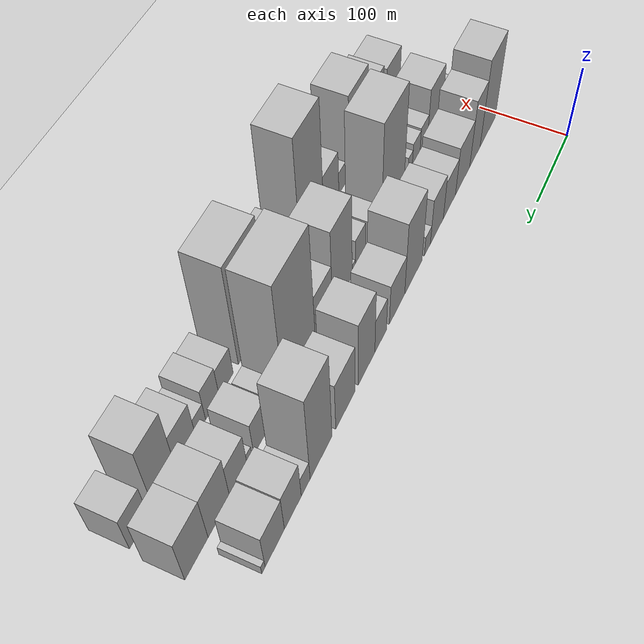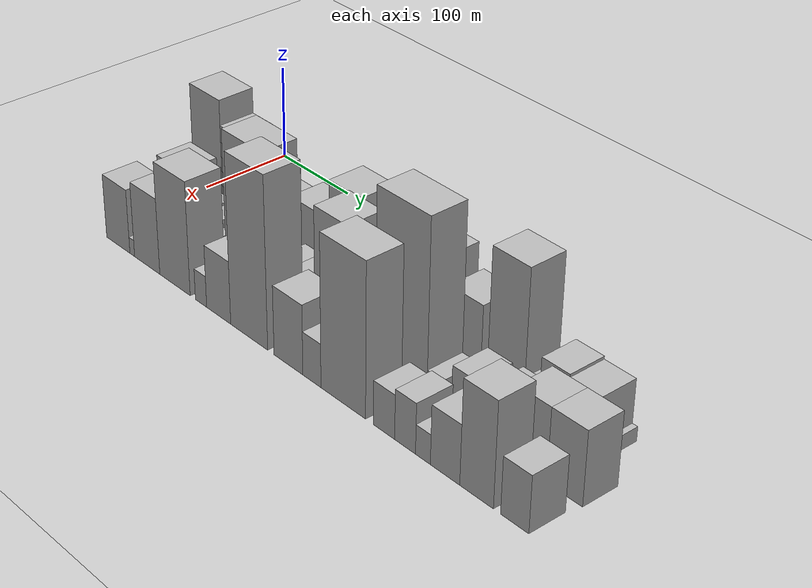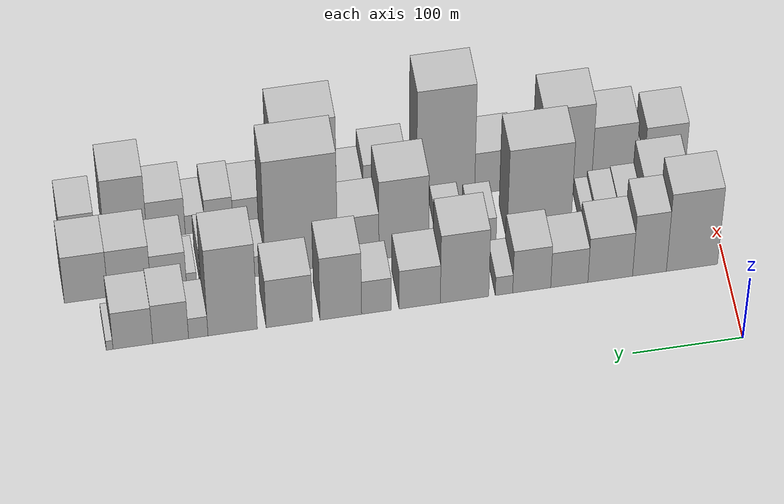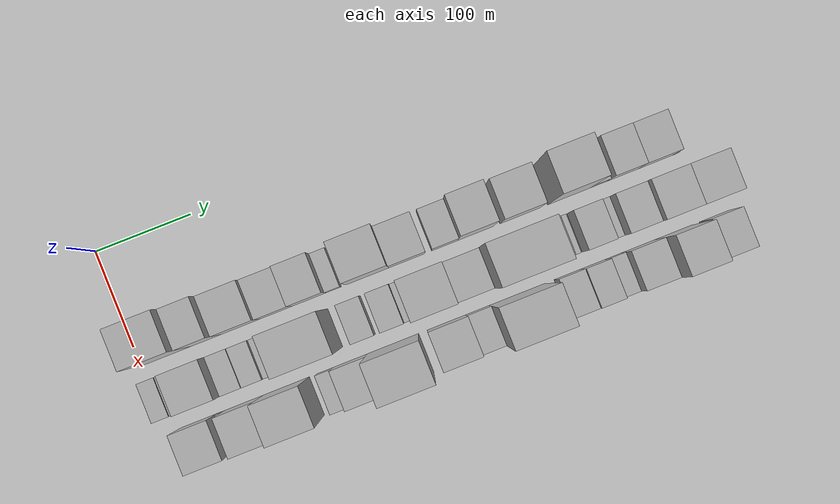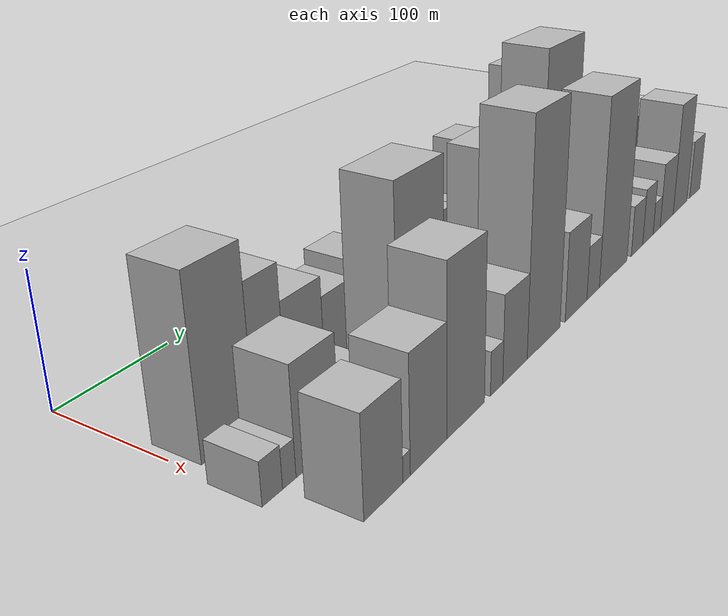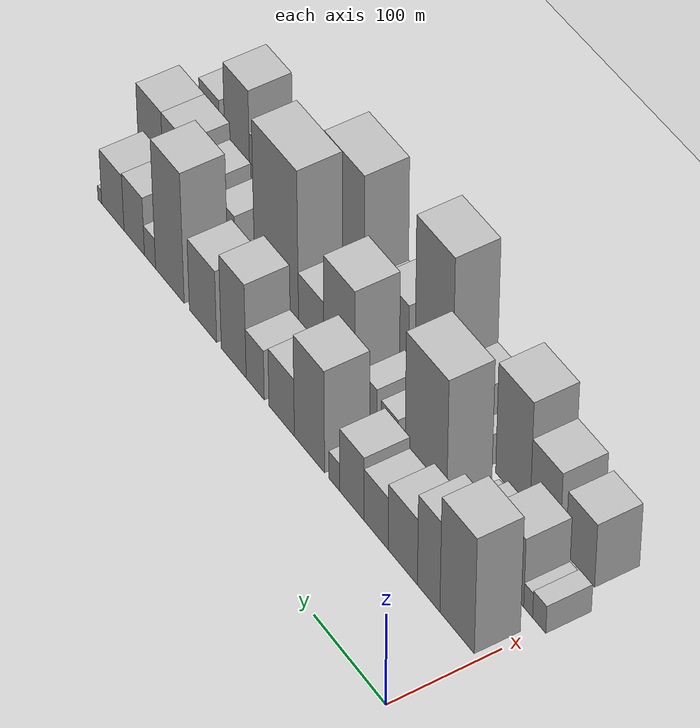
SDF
<sdf version="1.6">
 <world name="default">
  <include>
   <name>ground_plane_2</name>
   <uri>model://HANNAS_ground_plane</uri>
   <pose>100 0 0  0 0 0</pose>
  </include>
  <model name="building_21">
   <static>1</static>
   <pose>100.0000 30.4081 0 0.000000 0.000000 0.000000</pose>
   <link name="link">
    <pose>0 0 63.00 0 0 0</pose>
    <collision name="collision"><geometry><box><size>40.0000 46.9084 126.0000</size></box></geometry></collision>
    <visual name="visual">
     <cast_shadows>0</cast_shadows>
     <geometry><box><size>40.0000 46.9084 126.0000</size></box></geometry>
     <material>
      <script>
       <uri>model://HANNAS_wall/materials/scripts</uri>
       <uri>model://HANNAS_wall/materials/textures</uri>
       <name>vrc/HANNAS_wall</name>
      </script>
     </material>
    </visual>
   </link>
  </model>
  <model name="building_22">
   <static>1</static>
   <pose>100.0000 69.3866 0 0.000000 0.000000 0.000000</pose>
   <link name="link">
    <pose>0 0 49.50 0 0 0</pose>
    <collision name="collision"><geometry><box><size>40.0000 31.0486 99.0000</size></box></geometry></collision>
    <visual name="visual">
     <cast_shadows>0</cast_shadows>
     <geometry><box><size>40.0000 31.0486 99.0000</size></box></geometry>
     <material>
      <script>
       <uri>model://HANNAS_wall/materials/scripts</uri>
       <uri>model://HANNAS_wall/materials/textures</uri>
       <name>vrc/HANNAS_wall</name>
      </script>
     </material>
    </visual>
   </link>
  </model>
  <model name="building_23">
   <static>1</static>
   <pose>100.0000 105.3446 0 0.000000 0.000000 0.000000</pose>
   <link name="link">
    <pose>0 0 36.00 0 0 0</pose>
    <collision name="collision"><geometry><box><size>40.0000 40.8673 72.0000</size></box></geometry></collision>
    <visual name="visual">
     <cast_shadows>0</cast_shadows>
     <geometry><box><size>40.0000 40.8673 72.0000</size></box></geometry>
     <material>
      <script>
       <uri>model://HANNAS_wall/materials/scripts</uri>
       <uri>model://HANNAS_wall/materials/textures</uri>
       <name>vrc/HANNAS_wall</name>
      </script>
     </material>
    </visual>
   </link>
  </model>
  <model name="building_24">
   <static>1</static>
   <pose>100.0000 142.7728 0 0.000000 0.000000 0.000000</pose>
   <link name="link">
    <pose>0 0 28.50 0 0 0</pose>
    <collision name="collision"><geometry><box><size>40.0000 33.9892 57.0000</size></box></geometry></collision>
    <visual name="visual">
     <cast_shadows>0</cast_shadows>
     <geometry><box><size>40.0000 33.9892 57.0000</size></box></geometry>
     <material>
      <script>
       <uri>model://HANNAS_wall/materials/scripts</uri>
       <uri>model://HANNAS_wall/materials/textures</uri>
       <name>vrc/HANNAS_wall</name>
      </script>
     </material>
    </visual>
   </link>
  </model>
  <model name="building_25">
   <static>1</static>
   <pose>100.0000 177.1389 0 0.000000 0.000000 0.000000</pose>
   <link name="link">
    <pose>0 0 34.50 0 0 0</pose>
    <collision name="collision"><geometry><box><size>40.0000 34.7431 69.0000</size></box></geometry></collision>
    <visual name="visual">
     <cast_shadows>0</cast_shadows>
     <geometry><box><size>40.0000 34.7431 69.0000</size></box></geometry>
     <material>
      <script>
       <uri>model://HANNAS_wall/materials/scripts</uri>
       <uri>model://HANNAS_wall/materials/textures</uri>
       <name>vrc/HANNAS_wall</name>
      </script>
     </material>
    </visual>
   </link>
  </model>
  <model name="building_26">
   <static>1</static>
   <pose>100.0000 202.4227 0 0.000000 0.000000 0.000000</pose>
   <link name="link">
    <pose>0 0 15.00 0 0 0</pose>
    <collision name="collision"><geometry><box><size>40.0000 15.8244 30.0000</size></box></geometry></collision>
    <visual name="visual">
     <cast_shadows>0</cast_shadows>
     <geometry><box><size>40.0000 15.8244 30.0000</size></box></geometry>
     <material>
      <script>
       <uri>model://HANNAS_wall/materials/scripts</uri>
       <uri>model://HANNAS_wall/materials/textures</uri>
       <name>vrc/HANNAS_wall</name>
      </script>
     </material>
    </visual>
   </link>
  </model>
  <model name="building_27">
   <static>1</static>
   <pose>100.0000 238.3646 0 0.000000 0.000000 0.000000</pose>
   <link name="link">
    <pose>0 0 55.50 0 0 0</pose>
    <collision name="collision"><geometry><box><size>40.0000 44.0593 111.0000</size></box></geometry></collision>
    <visual name="visual">
     <cast_shadows>0</cast_shadows>
     <geometry><box><size>40.0000 44.0593 111.0000</size></box></geometry>
     <material>
      <script>
       <uri>model://HANNAS_wall/materials/scripts</uri>
       <uri>model://HANNAS_wall/materials/textures</uri>
       <name>vrc/HANNAS_wall</name>
      </script>
     </material>
    </visual>
   </link>
  </model>
  <model name="building_28">
   <static>1</static>
   <pose>100.0000 279.1129 0 0.000000 0.000000 0.000000</pose>
   <link name="link">
    <pose>0 0 31.50 0 0 0</pose>
    <collision name="collision"><geometry><box><size>40.0000 37.4374 63.0000</size></box></geometry></collision>
    <visual name="visual">
     <cast_shadows>0</cast_shadows>
     <geometry><box><size>40.0000 37.4374 63.0000</size></box></geometry>
     <material>
      <script>
       <uri>model://HANNAS_wall/materials/scripts</uri>
       <uri>model://HANNAS_wall/materials/textures</uri>
       <name>vrc/HANNAS_wall</name>
      </script>
     </material>
    </visual>
   </link>
  </model>
  <model name="building_29">
   <static>1</static>
   <pose>100.0000 318.3676 0 0.000000 0.000000 0.000000</pose>
   <link name="link">
    <pose>0 0 27.00 0 0 0</pose>
    <collision name="collision"><geometry><box><size>40.0000 27.0721 54.0000</size></box></geometry></collision>
    <visual name="visual">
     <cast_shadows>0</cast_shadows>
     <geometry><box><size>40.0000 27.0721 54.0000</size></box></geometry>
     <material>
      <script>
       <uri>model://HANNAS_wall/materials/scripts</uri>
       <uri>model://HANNAS_wall/materials/textures</uri>
       <name>vrc/HANNAS_wall</name>
      </script>
     </material>
    </visual>
   </link>
  </model>
  <model name="building_30">
   <static>1</static>
   <pose>100.0000 350.6865 0 0.000000 0.000000 0.000000</pose>
   <link name="link">
    <pose>0 0 51.00 0 0 0</pose>
    <collision name="collision"><geometry><box><size>40.0000 37.5657 102.0000</size></box></geometry></collision>
    <visual name="visual">
     <cast_shadows>0</cast_shadows>
     <geometry><box><size>40.0000 37.5657 102.0000</size></box></geometry>
     <material>
      <script>
       <uri>model://HANNAS_wall/materials/scripts</uri>
       <uri>model://HANNAS_wall/materials/textures</uri>
       <name>vrc/HANNAS_wall</name>
      </script>
     </material>
    </visual>
   </link>
  </model>
  <model name="building_31">
   <static>1</static>
   <pose>100.0000 397.3536 0 0.000000 0.000000 0.000000</pose>
   <link name="link">
    <pose>0 0 39.00 0 0 0</pose>
    <collision name="collision"><geometry><box><size>40.0000 41.7685 78.0000</size></box></geometry></collision>
    <visual name="visual">
     <cast_shadows>0</cast_shadows>
     <geometry><box><size>40.0000 41.7685 78.0000</size></box></geometry>
     <material>
      <script>
       <uri>model://HANNAS_wall/materials/scripts</uri>
       <uri>model://HANNAS_wall/materials/textures</uri>
       <name>vrc/HANNAS_wall</name>
      </script>
     </material>
    </visual>
   </link>
  </model>
  <model name="building_32">
   <static>1</static>
   <pose>100.0000 448.4988 0 0.000000 0.000000 0.000000</pose>
   <link name="link">
    <pose>0 0 70.50 0 0 0</pose>
    <collision name="collision"><geometry><box><size>40.0000 44.5219 141.0000</size></box></geometry></collision>
    <visual name="visual">
     <cast_shadows>0</cast_shadows>
     <geometry><box><size>40.0000 44.5219 141.0000</size></box></geometry>
     <material>
      <script>
       <uri>model://HANNAS_wall/materials/scripts</uri>
       <uri>model://HANNAS_wall/materials/textures</uri>
       <name>vrc/HANNAS_wall</name>
      </script>
     </material>
    </visual>
   </link>
  </model>
  <model name="building_33">
   <static>1</static>
   <pose>100.0000 479.5083 0 0.000000 0.000000 0.000000</pose>
   <link name="link">
    <pose>0 0 16.50 0 0 0</pose>
    <collision name="collision"><geometry><box><size>40.0000 17.4971 33.0000</size></box></geometry></collision>
    <visual name="visual">
     <cast_shadows>0</cast_shadows>
     <geometry><box><size>40.0000 17.4971 33.0000</size></box></geometry>
     <material>
      <script>
       <uri>model://HANNAS_wall/materials/scripts</uri>
       <uri>model://HANNAS_wall/materials/textures</uri>
       <name>vrc/HANNAS_wall</name>
      </script>
     </material>
    </visual>
   </link>
  </model>
  <model name="building_34">
   <static>1</static>
   <pose>100.0000 504.4014 0 0.000000 0.000000 0.000000</pose>
   <link name="link">
    <pose>0 0 31.50 0 0 0</pose>
    <collision name="collision"><geometry><box><size>40.0000 32.2890 63.0000</size></box></geometry></collision>
    <visual name="visual">
     <cast_shadows>0</cast_shadows>
     <geometry><box><size>40.0000 32.2890 63.0000</size></box></geometry>
     <material>
      <script>
       <uri>model://HANNAS_wall/materials/scripts</uri>
       <uri>model://HANNAS_wall/materials/textures</uri>
       <name>vrc/HANNAS_wall</name>
      </script>
     </material>
    </visual>
   </link>
  </model>
  <model name="building_35">
   <static>1</static>
   <pose>100.0000 538.3689 0 0.000000 0.000000 0.000000</pose>
   <link name="link">
    <pose>0 0 30.00 0 0 0</pose>
    <collision name="collision"><geometry><box><size>40.0000 35.6460 60.0000</size></box></geometry></collision>
    <visual name="visual">
     <cast_shadows>0</cast_shadows>
     <geometry><box><size>40.0000 35.6460 60.0000</size></box></geometry>
     <material>
      <script>
       <uri>model://HANNAS_wall/materials/scripts</uri>
       <uri>model://HANNAS_wall/materials/textures</uri>
       <name>vrc/HANNAS_wall</name>
      </script>
     </material>
    </visual>
   </link>
  </model>
  <model name="building_36">
   <static>1</static>
   <pose>100.0000 559.2522 0 0.000000 0.000000 0.000000</pose>
   <link name="link">
    <pose>0 0 7.50 0 0 0</pose>
    <collision name="collision"><geometry><box><size>40.0000 6.1206 15.0000</size></box></geometry></collision>
    <visual name="visual">
     <cast_shadows>0</cast_shadows>
     <geometry><box><size>40.0000 6.1206 15.0000</size></box></geometry>
     <material>
      <script>
       <uri>model://HANNAS_wall/materials/scripts</uri>
       <uri>model://HANNAS_wall/materials/textures</uri>
       <name>vrc/HANNAS_wall</name>
      </script>
     </material>
    </visual>
   </link>
  </model>
  <model name="building_52">
   <static>1</static>
   <pose>155.0000 4.6129 0 0.000000 0.000000 0.000000</pose>
   <link name="link">
    <pose>0 0 15.00 0 0 0</pose>
    <collision name="collision"><geometry><box><size>40.0000 17.6623 30.0000</size></box></geometry></collision>
    <visual name="visual">
     <cast_shadows>0</cast_shadows>
     <geometry><box><size>40.0000 17.6623 30.0000</size></box></geometry>
     <material>
      <script>
       <uri>model://HANNAS_wall/materials/scripts</uri>
       <uri>model://HANNAS_wall/materials/textures</uri>
       <name>vrc/HANNAS_wall</name>
      </script>
     </material>
    </visual>
   </link>
  </model>
  <model name="building_53">
   <static>1</static>
   <pose>155.0000 19.4923 0 0.000000 0.000000 0.000000</pose>
   <link name="link">
    <pose>0 0 13.50 0 0 0</pose>
    <collision name="collision"><geometry><box><size>40.0000 12.0966 27.0000</size></box></geometry></collision>
    <visual name="visual">
     <cast_shadows>0</cast_shadows>
     <geometry><box><size>40.0000 12.0966 27.0000</size></box></geometry>
     <material>
      <script>
       <uri>model://HANNAS_wall/materials/scripts</uri>
       <uri>model://HANNAS_wall/materials/textures</uri>
       <name>vrc/HANNAS_wall</name>
      </script>
     </material>
    </visual>
   </link>
  </model>
  <model name="building_54">
   <static>1</static>
   <pose>155.0000 46.2638 0 0.000000 0.000000 0.000000</pose>
   <link name="link">
    <pose>0 0 37.50 0 0 0</pose>
    <collision name="collision"><geometry><box><size>40.0000 41.4464 75.0000</size></box></geometry></collision>
    <visual name="visual">
     <cast_shadows>0</cast_shadows>
     <geometry><box><size>40.0000 41.4464 75.0000</size></box></geometry>
     <material>
      <script>
       <uri>model://HANNAS_wall/materials/scripts</uri>
       <uri>model://HANNAS_wall/materials/textures</uri>
       <name>vrc/HANNAS_wall</name>
      </script>
     </material>
    </visual>
   </link>
  </model>
  <model name="building_55">
   <static>1</static>
   <pose>155.0000 77.8366 0 0.000000 0.000000 0.000000</pose>
   <link name="link">
    <pose>0 0 19.50 0 0 0</pose>
    <collision name="collision"><geometry><box><size>40.0000 21.6991 39.0000</size></box></geometry></collision>
    <visual name="visual">
     <cast_shadows>0</cast_shadows>
     <geometry><box><size>40.0000 21.6991 39.0000</size></box></geometry>
     <material>
      <script>
       <uri>model://HANNAS_wall/materials/scripts</uri>
       <uri>model://HANNAS_wall/materials/textures</uri>
       <name>vrc/HANNAS_wall</name>
      </script>
     </material>
    </visual>
   </link>
  </model>
  <model name="building_56">
   <static>1</static>
   <pose>155.0000 99.1272 0 0.000000 0.000000 0.000000</pose>
   <link name="link">
    <pose>0 0 18.00 0 0 0</pose>
    <collision name="collision"><geometry><box><size>40.0000 20.8821 36.0000</size></box></geometry></collision>
    <visual name="visual">
     <cast_shadows>0</cast_shadows>
     <geometry><box><size>40.0000 20.8821 36.0000</size></box></geometry>
     <material>
      <script>
       <uri>model://HANNAS_wall/materials/scripts</uri>
       <uri>model://HANNAS_wall/materials/textures</uri>
       <name>vrc/HANNAS_wall</name>
      </script>
     </material>
    </visual>
   </link>
  </model>
  <model name="building_57">
   <static>1</static>
   <pose>155.0000 115.5061 0 0.000000 0.000000 0.000000</pose>
   <link name="link">
    <pose>0 0 13.50 0 0 0</pose>
    <collision name="collision"><geometry><box><size>40.0000 11.8757 27.0000</size></box></geometry></collision>
    <visual name="visual">
     <cast_shadows>0</cast_shadows>
     <geometry><box><size>40.0000 11.8757 27.0000</size></box></geometry>
     <material>
      <script>
       <uri>model://HANNAS_wall/materials/scripts</uri>
       <uri>model://HANNAS_wall/materials/textures</uri>
       <name>vrc/HANNAS_wall</name>
      </script>
     </material>
    </visual>
   </link>
  </model>
  <model name="building_58">
   <static>1</static>
   <pose>155.0000 160.7035 0 0.000000 0.000000 0.000000</pose>
   <link name="link">
    <pose>0 0 73.50 0 0 0</pose>
    <collision name="collision"><geometry><box><size>40.0000 58.5192 147.0000</size></box></geometry></collision>
    <visual name="visual">
     <cast_shadows>0</cast_shadows>
     <geometry><box><size>40.0000 58.5192 147.0000</size></box></geometry>
     <material>
      <script>
       <uri>model://HANNAS_wall/materials/scripts</uri>
       <uri>model://HANNAS_wall/materials/textures</uri>
       <name>vrc/HANNAS_wall</name>
      </script>
     </material>
    </visual>
   </link>
  </model>
  <model name="building_59">
   <static>1</static>
   <pose>155.0000 212.0692 0 0.000000 0.000000 0.000000</pose>
   <link name="link">
    <pose>0 0 21.00 0 0 0</pose>
    <collision name="collision"><geometry><box><size>40.0000 24.2121 42.0000</size></box></geometry></collision>
    <visual name="visual">
     <cast_shadows>0</cast_shadows>
     <geometry><box><size>40.0000 24.2121 42.0000</size></box></geometry>
     <material>
      <script>
       <uri>model://HANNAS_wall/materials/scripts</uri>
       <uri>model://HANNAS_wall/materials/textures</uri>
       <name>vrc/HANNAS_wall</name>
      </script>
     </material>
    </visual>
   </link>
  </model>
  <model name="building_60">
   <static>1</static>
   <pose>155.0000 242.2982 0 0.000000 0.000000 0.000000</pose>
   <link name="link">
    <pose>0 0 24.00 0 0 0</pose>
    <collision name="collision"><geometry><box><size>40.0000 24.2459 48.0000</size></box></geometry></collision>
    <visual name="visual">
     <cast_shadows>0</cast_shadows>
     <geometry><box><size>40.0000 24.2459 48.0000</size></box></geometry>
     <material>
      <script>
       <uri>model://HANNAS_wall/materials/scripts</uri>
       <uri>model://HANNAS_wall/materials/textures</uri>
       <name>vrc/HANNAS_wall</name>
      </script>
     </material>
    </visual>
   </link>
  </model>
  <model name="building_61">
   <static>1</static>
   <pose>155.0000 258.1698 0 0.000000 0.000000 0.000000</pose>
   <link name="link">
    <pose>0 0 9.00 0 0 0</pose>
    <collision name="collision"><geometry><box><size>40.0000 7.4972 18.0000</size></box></geometry></collision>
    <visual name="visual">
     <cast_shadows>0</cast_shadows>
     <geometry><box><size>40.0000 7.4972 18.0000</size></box></geometry>
     <material>
      <script>
       <uri>model://HANNAS_wall/materials/scripts</uri>
       <uri>model://HANNAS_wall/materials/textures</uri>
       <name>vrc/HANNAS_wall</name>
      </script>
     </material>
    </visual>
   </link>
  </model>
  <model name="building_62">
   <static>1</static>
   <pose>155.0000 284.5172 0 0.000000 0.000000 0.000000</pose>
   <link name="link">
    <pose>0 0 63.00 0 0 0</pose>
    <collision name="collision"><geometry><box><size>40.0000 45.1977 126.0000</size></box></geometry></collision>
    <visual name="visual">
     <cast_shadows>0</cast_shadows>
     <geometry><box><size>40.0000 45.1977 126.0000</size></box></geometry>
     <material>
      <script>
       <uri>model://HANNAS_wall/materials/scripts</uri>
       <uri>model://HANNAS_wall/materials/textures</uri>
       <name>vrc/HANNAS_wall</name>
      </script>
     </material>
    </visual>
   </link>
  </model>
  <model name="building_63">
   <static>1</static>
   <pose>155.0000 325.9085 0 0.000000 0.000000 0.000000</pose>
   <link name="link">
    <pose>0 0 37.50 0 0 0</pose>
    <collision name="collision"><geometry><box><size>40.0000 37.5848 75.0000</size></box></geometry></collision>
    <visual name="visual">
     <cast_shadows>0</cast_shadows>
     <geometry><box><size>40.0000 37.5848 75.0000</size></box></geometry>
     <material>
      <script>
       <uri>model://HANNAS_wall/materials/scripts</uri>
       <uri>model://HANNAS_wall/materials/textures</uri>
       <name>vrc/HANNAS_wall</name>
      </script>
     </material>
    </visual>
   </link>
  </model>
  <model name="building_64">
   <static>1</static>
   <pose>155.0000 377.6794 0 0.000000 0.000000 0.000000</pose>
   <link name="link">
    <pose>0 0 91.50 0 0 0</pose>
    <collision name="collision"><geometry><box><size>40.0000 65.9570 183.0000</size></box></geometry></collision>
    <visual name="visual">
     <cast_shadows>0</cast_shadows>
     <geometry><box><size>40.0000 65.9570 183.0000</size></box></geometry>
     <material>
      <script>
       <uri>model://HANNAS_wall/materials/scripts</uri>
       <uri>model://HANNAS_wall/materials/textures</uri>
       <name>vrc/HANNAS_wall</name>
      </script>
     </material>
    </visual>
   </link>
  </model>
  <model name="building_65">
   <static>1</static>
   <pose>155.0000 420.5182 0 0.000000 0.000000 0.000000</pose>
   <link name="link">
    <pose>0 0 16.50 0 0 0</pose>
    <collision name="collision"><geometry><box><size>40.0000 19.7208 33.0000</size></box></geometry></collision>
    <visual name="visual">
     <cast_shadows>0</cast_shadows>
     <geometry><box><size>40.0000 19.7208 33.0000</size></box></geometry>
     <material>
      <script>
       <uri>model://HANNAS_wall/materials/scripts</uri>
       <uri>model://HANNAS_wall/materials/textures</uri>
       <name>vrc/HANNAS_wall</name>
      </script>
     </material>
    </visual>
   </link>
  </model>
  <model name="building_66">
   <static>1</static>
   <pose>155.0000 434.0667 0 0.000000 0.000000 0.000000</pose>
   <link name="link">
    <pose>0 0 9.00 0 0 0</pose>
    <collision name="collision"><geometry><box><size>40.0000 7.3762 18.0000</size></box></geometry></collision>
    <visual name="visual">
     <cast_shadows>0</cast_shadows>
     <geometry><box><size>40.0000 7.3762 18.0000</size></box></geometry>
     <material>
      <script>
       <uri>model://HANNAS_wall/materials/scripts</uri>
       <uri>model://HANNAS_wall/materials/textures</uri>
       <name>vrc/HANNAS_wall</name>
      </script>
     </material>
    </visual>
   </link>
  </model>
  <model name="building_67">
   <static>1</static>
   <pose>155.0000 455.4434 0 0.000000 0.000000 0.000000</pose>
   <link name="link">
    <pose>0 0 27.00 0 0 0</pose>
    <collision name="collision"><geometry><box><size>40.0000 29.3773 54.0000</size></box></geometry></collision>
    <visual name="visual">
     <cast_shadows>0</cast_shadows>
     <geometry><box><size>40.0000 29.3773 54.0000</size></box></geometry>
     <material>
      <script>
       <uri>model://HANNAS_wall/materials/scripts</uri>
       <uri>model://HANNAS_wall/materials/textures</uri>
       <name>vrc/HANNAS_wall</name>
      </script>
     </material>
    </visual>
   </link>
  </model>
  <model name="building_68">
   <static>1</static>
   <pose>155.0000 477.7358 0 0.000000 0.000000 0.000000</pose>
   <link name="link">
    <pose>0 0 10.50 0 0 0</pose>
    <collision name="collision"><geometry><box><size>40.0000 9.2075 21.0000</size></box></geometry></collision>
    <visual name="visual">
     <cast_shadows>0</cast_shadows>
     <geometry><box><size>40.0000 9.2075 21.0000</size></box></geometry>
     <material>
      <script>
       <uri>model://HANNAS_wall/materials/scripts</uri>
       <uri>model://HANNAS_wall/materials/textures</uri>
       <name>vrc/HANNAS_wall</name>
      </script>
     </material>
    </visual>
   </link>
  </model>
  <model name="building_69">
   <static>1</static>
   <pose>155.0000 498.4529 0 0.000000 0.000000 0.000000</pose>
   <link name="link">
    <pose>0 0 28.50 0 0 0</pose>
    <collision name="collision"><geometry><box><size>40.0000 32.2268 57.0000</size></box></geometry></collision>
    <visual name="visual">
     <cast_shadows>0</cast_shadows>
     <geometry><box><size>40.0000 32.2268 57.0000</size></box></geometry>
     <material>
      <script>
       <uri>model://HANNAS_wall/materials/scripts</uri>
       <uri>model://HANNAS_wall/materials/textures</uri>
       <name>vrc/HANNAS_wall</name>
      </script>
     </material>
    </visual>
   </link>
  </model>
  <model name="building_70">
   <static>1</static>
   <pose>155.0000 533.9598 0 0.000000 0.000000 0.000000</pose>
   <link name="link">
    <pose>0 0 37.50 0 0 0</pose>
    <collision name="collision"><geometry><box><size>40.0000 38.7869 75.0000</size></box></geometry></collision>
    <visual name="visual">
     <cast_shadows>0</cast_shadows>
     <geometry><box><size>40.0000 38.7869 75.0000</size></box></geometry>
     <material>
      <script>
       <uri>model://HANNAS_wall/materials/scripts</uri>
       <uri>model://HANNAS_wall/materials/textures</uri>
       <name>vrc/HANNAS_wall</name>
      </script>
     </material>
    </visual>
   </link>
  </model>
  <model name="building_71">
   <static>1</static>
   <pose>155.0000 573.1449 0 0.000000 0.000000 0.000000</pose>
   <link name="link">
    <pose>0 0 37.50 0 0 0</pose>
    <collision name="collision"><geometry><box><size>40.0000 39.5834 75.0000</size></box></geometry></collision>
    <visual name="visual">
     <cast_shadows>0</cast_shadows>
     <geometry><box><size>40.0000 39.5834 75.0000</size></box></geometry>
     <material>
      <script>
       <uri>model://HANNAS_wall/materials/scripts</uri>
       <uri>model://HANNAS_wall/materials/textures</uri>
       <name>vrc/HANNAS_wall</name>
      </script>
     </material>
    </visual>
   </link>
  </model>
  <model name="building_89">
   <static>1</static>
   <pose>210.0000 33.5114 0 0.000000 0.000000 0.000000</pose>
   <link name="link">
    <pose>0 0 34.50 0 0 0</pose>
    <collision name="collision"><geometry><box><size>40.0000 38.6933 69.0000</size></box></geometry></collision>
    <visual name="visual">
     <cast_shadows>0</cast_shadows>
     <geometry><box><size>40.0000 38.6933 69.0000</size></box></geometry>
     <material>
      <script>
       <uri>model://HANNAS_wall/materials/scripts</uri>
       <uri>model://HANNAS_wall/materials/textures</uri>
       <name>vrc/HANNAS_wall</name>
      </script>
     </material>
    </visual>
   </link>
  </model>
  <model name="building_90">
   <static>1</static>
   <pose>210.0000 56.7287 0 0.000000 0.000000 0.000000</pose>
   <link name="link">
    <pose>0 0 9.00 0 0 0</pose>
    <collision name="collision"><geometry><box><size>40.0000 7.7414 18.0000</size></box></geometry></collision>
    <visual name="visual">
     <cast_shadows>0</cast_shadows>
     <geometry><box><size>40.0000 7.7414 18.0000</size></box></geometry>
     <material>
      <script>
       <uri>model://HANNAS_wall/materials/scripts</uri>
       <uri>model://HANNAS_wall/materials/textures</uri>
       <name>vrc/HANNAS_wall</name>
      </script>
     </material>
    </visual>
   </link>
  </model>
  <model name="building_91">
   <static>1</static>
   <pose>210.0000 80.9698 0 0.000000 0.000000 0.000000</pose>
   <link name="link">
    <pose>0 0 40.50 0 0 0</pose>
    <collision name="collision"><geometry><box><size>40.0000 40.7408 81.0000</size></box></geometry></collision>
    <visual name="visual">
     <cast_shadows>0</cast_shadows>
     <geometry><box><size>40.0000 40.7408 81.0000</size></box></geometry>
     <material>
      <script>
       <uri>model://HANNAS_wall/materials/scripts</uri>
       <uri>model://HANNAS_wall/materials/textures</uri>
       <name>vrc/HANNAS_wall</name>
      </script>
     </material>
    </visual>
   </link>
  </model>
  <model name="building_92">
   <static>1</static>
   <pose>210.0000 125.1373 0 0.000000 0.000000 0.000000</pose>
   <link name="link">
    <pose>0 0 60.00 0 0 0</pose>
    <collision name="collision"><geometry><box><size>40.0000 47.5943 120.0000</size></box></geometry></collision>
    <visual name="visual">
     <cast_shadows>0</cast_shadows>
     <geometry><box><size>40.0000 47.5943 120.0000</size></box></geometry>
     <material>
      <script>
       <uri>model://HANNAS_wall/materials/scripts</uri>
       <uri>model://HANNAS_wall/materials/textures</uri>
       <name>vrc/HANNAS_wall</name>
      </script>
     </material>
    </visual>
   </link>
  </model>
  <model name="building_93">
   <static>1</static>
   <pose>210.0000 165.5117 0 0.000000 0.000000 0.000000</pose>
   <link name="link">
    <pose>0 0 16.50 0 0 0</pose>
    <collision name="collision"><geometry><box><size>40.0000 17.1545 33.0000</size></box></geometry></collision>
    <visual name="visual">
     <cast_shadows>0</cast_shadows>
     <geometry><box><size>40.0000 17.1545 33.0000</size></box></geometry>
     <material>
      <script>
       <uri>model://HANNAS_wall/materials/scripts</uri>
       <uri>model://HANNAS_wall/materials/textures</uri>
       <name>vrc/HANNAS_wall</name>
      </script>
     </material>
    </visual>
   </link>
  </model>
  <model name="building_94">
   <static>1</static>
   <pose>210.0000 192.0698 0 0.000000 0.000000 0.000000</pose>
   <link name="link">
    <pose>0 0 33.00 0 0 0</pose>
    <collision name="collision"><geometry><box><size>40.0000 35.9618 66.0000</size></box></geometry></collision>
    <visual name="visual">
     <cast_shadows>0</cast_shadows>
     <geometry><box><size>40.0000 35.9618 66.0000</size></box></geometry>
     <material>
      <script>
       <uri>model://HANNAS_wall/materials/scripts</uri>
       <uri>model://HANNAS_wall/materials/textures</uri>
       <name>vrc/HANNAS_wall</name>
      </script>
     </material>
    </visual>
   </link>
  </model>
  <model name="building_95">
   <static>1</static>
   <pose>210.0000 236.7604 0 0.000000 0.000000 0.000000</pose>
   <link name="link">
    <pose>0 0 88.50 0 0 0</pose>
    <collision name="collision"><geometry><box><size>40.0000 53.4195 177.0000</size></box></geometry></collision>
    <visual name="visual">
     <cast_shadows>0</cast_shadows>
     <geometry><box><size>40.0000 53.4195 177.0000</size></box></geometry>
     <material>
      <script>
       <uri>model://HANNAS_wall/materials/scripts</uri>
       <uri>model://HANNAS_wall/materials/textures</uri>
       <name>vrc/HANNAS_wall</name>
      </script>
     </material>
    </visual>
   </link>
  </model>
  <model name="building_96">
   <static>1</static>
   <pose>210.0000 292.4547 0 0.000000 0.000000 0.000000</pose>
   <link name="link">
    <pose>0 0 36.00 0 0 0</pose>
    <collision name="collision"><geometry><box><size>40.0000 39.9690 72.0000</size></box></geometry></collision>
    <visual name="visual">
     <cast_shadows>0</cast_shadows>
     <geometry><box><size>40.0000 39.9690 72.0000</size></box></geometry>
     <material>
      <script>
       <uri>model://HANNAS_wall/materials/scripts</uri>
       <uri>model://HANNAS_wall/materials/textures</uri>
       <name>vrc/HANNAS_wall</name>
      </script>
     </material>
    </visual>
   </link>
  </model>
  <model name="building_97">
   <static>1</static>
   <pose>210.0000 324.6839 0 0.000000 0.000000 0.000000</pose>
   <link name="link">
    <pose>0 0 22.50 0 0 0</pose>
    <collision name="collision"><geometry><box><size>40.0000 24.4894 45.0000</size></box></geometry></collision>
    <visual name="visual">
     <cast_shadows>0</cast_shadows>
     <geometry><box><size>40.0000 24.4894 45.0000</size></box></geometry>
     <material>
      <script>
       <uri>model://HANNAS_wall/materials/scripts</uri>
       <uri>model://HANNAS_wall/materials/textures</uri>
       <name>vrc/HANNAS_wall</name>
      </script>
     </material>
    </visual>
   </link>
  </model>
  <model name="building_98">
   <static>1</static>
   <pose>210.0000 366.1607 0 0.000000 0.000000 0.000000</pose>
   <link name="link">
    <pose>0 0 78.00 0 0 0</pose>
    <collision name="collision"><geometry><box><size>40.0000 58.4641 156.0000</size></box></geometry></collision>
    <visual name="visual">
     <cast_shadows>0</cast_shadows>
     <geometry><box><size>40.0000 58.4641 156.0000</size></box></geometry>
     <material>
      <script>
       <uri>model://HANNAS_wall/materials/scripts</uri>
       <uri>model://HANNAS_wall/materials/textures</uri>
       <name>vrc/HANNAS_wall</name>
      </script>
     </material>
    </visual>
   </link>
  </model>
  <model name="building_99">
   <static>1</static>
   <pose>210.0000 418.7715 0 0.000000 0.000000 0.000000</pose>
   <link name="link">
    <pose>0 0 22.50 0 0 0</pose>
    <collision name="collision"><geometry><box><size>40.0000 26.7574 45.0000</size></box></geometry></collision>
    <visual name="visual">
     <cast_shadows>0</cast_shadows>
     <geometry><box><size>40.0000 26.7574 45.0000</size></box></geometry>
     <material>
      <script>
       <uri>model://HANNAS_wall/materials/scripts</uri>
       <uri>model://HANNAS_wall/materials/textures</uri>
       <name>vrc/HANNAS_wall</name>
      </script>
     </material>
    </visual>
   </link>
  </model>
  <model name="building_100">
   <static>1</static>
   <pose>210.0000 444.9899 0 0.000000 0.000000 0.000000</pose>
   <link name="link">
    <pose>0 0 25.50 0 0 0</pose>
    <collision name="collision"><geometry><box><size>40.0000 25.6795 51.0000</size></box></geometry></collision>
    <visual name="visual">
     <cast_shadows>0</cast_shadows>
     <geometry><box><size>40.0000 25.6795 51.0000</size></box></geometry>
     <material>
      <script>
       <uri>model://HANNAS_wall/materials/scripts</uri>
       <uri>model://HANNAS_wall/materials/textures</uri>
       <name>vrc/HANNAS_wall</name>
      </script>
     </material>
    </visual>
   </link>
  </model>
  <model name="building_101">
   <static>1</static>
   <pose>210.0000 466.8172 0 0.000000 0.000000 0.000000</pose>
   <link name="link">
    <pose>0 0 15.00 0 0 0</pose>
    <collision name="collision"><geometry><box><size>40.0000 17.9750 30.0000</size></box></geometry></collision>
    <visual name="visual">
     <cast_shadows>0</cast_shadows>
     <geometry><box><size>40.0000 17.9750 30.0000</size></box></geometry>
     <material>
      <script>
       <uri>model://HANNAS_wall/materials/scripts</uri>
       <uri>model://HANNAS_wall/materials/textures</uri>
       <name>vrc/HANNAS_wall</name>
      </script>
     </material>
    </visual>
   </link>
  </model>
  <model name="building_102">
   <static>1</static>
   <pose>210.0000 493.2020 0 0.000000 0.000000 0.000000</pose>
   <link name="link">
    <pose>0 0 30.00 0 0 0</pose>
    <collision name="collision"><geometry><box><size>40.0000 34.7946 60.0000</size></box></geometry></collision>
    <visual name="visual">
     <cast_shadows>0</cast_shadows>
     <geometry><box><size>40.0000 34.7946 60.0000</size></box></geometry>
     <material>
      <script>
       <uri>model://HANNAS_wall/materials/scripts</uri>
       <uri>model://HANNAS_wall/materials/textures</uri>
       <name>vrc/HANNAS_wall</name>
      </script>
     </material>
    </visual>
   </link>
  </model>
  <model name="building_103">
   <static>1</static>
   <pose>210.0000 529.9894 0 0.000000 0.000000 0.000000</pose>
   <link name="link">
    <pose>0 0 52.50 0 0 0</pose>
    <collision name="collision"><geometry><box><size>40.0000 38.7803 105.0000</size></box></geometry></collision>
    <visual name="visual">
     <cast_shadows>0</cast_shadows>
     <geometry><box><size>40.0000 38.7803 105.0000</size></box></geometry>
     <material>
      <script>
       <uri>model://HANNAS_wall/materials/scripts</uri>
       <uri>model://HANNAS_wall/materials/textures</uri>
       <name>vrc/HANNAS_wall</name>
      </script>
     </material>
    </visual>
   </link>
  </model>
  <model name="building_104">
   <static>1</static>
   <pose>210.0000 573.1129 0 0.000000 0.000000 0.000000</pose>
   <link name="link">
    <pose>0 0 28.50 0 0 0</pose>
    <collision name="collision"><geometry><box><size>40.0000 31.4665 57.0000</size></box></geometry></collision>
    <visual name="visual">
     <cast_shadows>0</cast_shadows>
     <geometry><box><size>40.0000 31.4665 57.0000</size></box></geometry>
     <material>
      <script>
       <uri>model://HANNAS_wall/materials/scripts</uri>
       <uri>model://HANNAS_wall/materials/textures</uri>
       <name>vrc/HANNAS_wall</name>
      </script>
     </material>
    </visual>
   </link>
  </model>
 </world>
</sdf>
